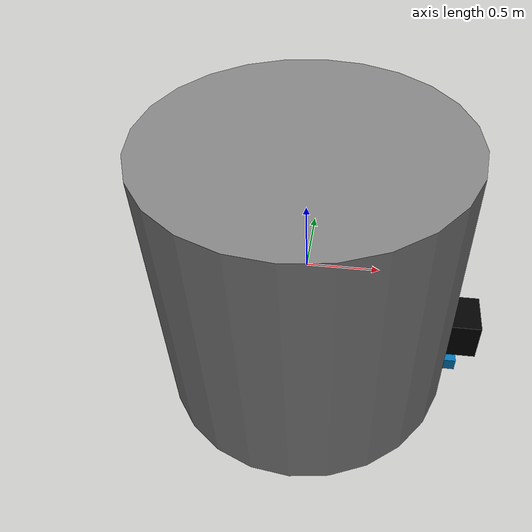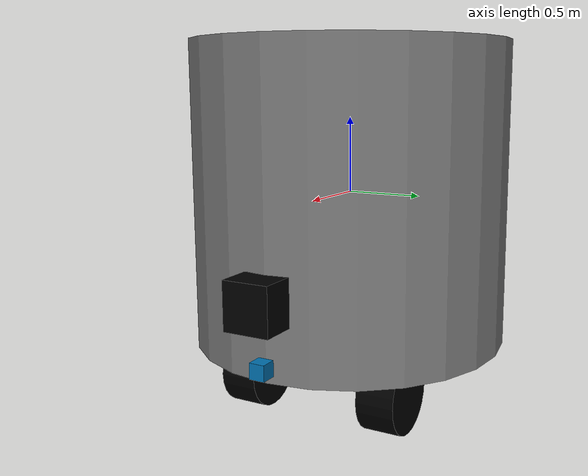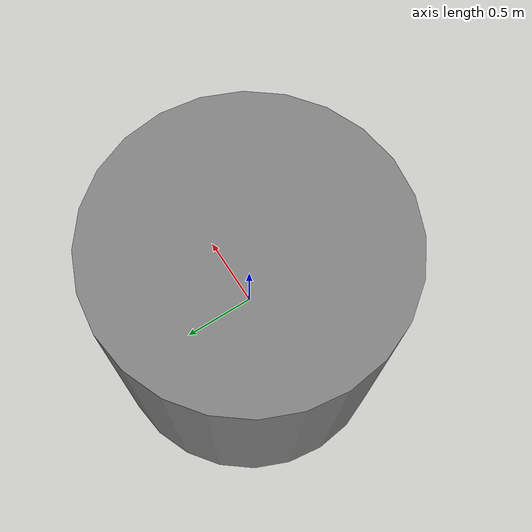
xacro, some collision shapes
<?xml version="1.0" encoding="utf-8"?>
<!-- |    This document was autogenerated by xacro from ../ex00/robot.urdf             | -->
<!-- |    EDITING THIS FILE BY HAND IS NOT RECOMMENDED                                 | -->

<robot name="robot" xmlns:xacro="http://www.ros.org/wiki/xacro">
  <xacro:include filename="$(find robot_diff_drive)/urdf/robot.gazebo.xacro"/>

  <material name="gray">
    <color rgba="0.5 0.5 0.5 1"/>
  </material>

  <material name="black">
    <color rgba="0 0 0 1"/>
  </material>

  <link name="base_link">
    <visual>
      <geometry>
        <cylinder length="2.0" radius="1.05"/>
      </geometry>
      <material name="gray"/>
    </visual>
    <collision>
      <geometry>
        <cylinder length="2.0" radius="1.05"/>
      </geometry>
    </collision>
    <inertial>
      <mass value="20"/>
      <inertia ixx="12.1792" ixy="0.0" ixz="0.0" iyy="12.1792" iyz="0.0" izz="11.025"/>
    </inertial>
  </link>

  <link name="right_wheel">
    <visual>
      <geometry>
        <cylinder length="0.25" radius="0.25"/>
      </geometry>
      <origin rpy="1.57075 1.57075 0"/>
      <material name="black"/>
    </visual>
    <collision>
      <geometry>
        <cylinder length="0.25" radius="0.25"/>
      </geometry>
      <origin rpy="1.57075 1.57075 0"/>
    </collision>
    <inertial>
      <mu1 value="2.0"/>
      <mu2 value="1.0"/>
      <kp value="10000000.0" />
      <kd value="1.0" />
      <mass value="4"/>
      <inertia ixx="0.0833" ixy="0.0" ixz="0.0" iyy="0.0833" iyz="0.0" izz="0.125"/>
    </inertial>
  </link>

  <joint name="right_wheel_to_base_link" type="continuous">
    <parent link="base_link"/>
    <child link="right_wheel"/>
    <axis xyz="0 1 0"/>
    <origin xyz="0.4 0.5 -1.2"/>
  </joint>

  <transmission name="right_wheel_trans">
    <type>transmission_interface/SimpleTransmission</type>
    <actuator name="right_wheel_motor">
      <mechanicalReduction>1</mechanicalReduction>
    </actuator>
    <joint name="right_wheel_to_base_link">
      <hardwareInterface>hardware_interface/VelocityJointInterface</hardwareInterface>
    </joint>
  </transmission>

  <gazebo reference="right_wheel">
    <mu1 value="2.0"/>
    <mu2 value="1.0"/>
    <kp value="10000000.0" />
    <kd value="1.0" />
    <material>Gazebo/Grey</material>
  </gazebo>

  <link name="left_wheel">
    <visual>
      <geometry>
        <cylinder length="0.25" radius="0.25"/>
      </geometry>
      <origin rpy="1.57075 1.57075 0"/>
      <material name="black"/>
    </visual>
    <collision>
      <geometry>
        <cylinder length="0.25" radius="0.25"/>
      </geometry>
      <origin rpy="1.57075 1.57075 0"/>
    </collision>
    <inertial>
      <mu1 value="2.0"/>
      <mu2 value="1.0"/>
      <kp value="10000000.0" />
      <kd value="1.0" />
      <mass value="4"/>
      <inertia ixx="0.0833" ixy="0.0" ixz="0.0" iyy="0.0833" iyz="0.0" izz="0.125"/>
    </inertial>
  </link>

  <joint name="left_wheel_to_base_link" type="continuous">
    <parent link="base_link"/>
    <child link="left_wheel"/>
    <axis xyz="0 1 0"/>
    <origin xyz="0.4 -0.5 -1.2"/>
  </joint>

  <transmission name="left_wheel_trans">
    <type>transmission_interface/SimpleTransmission</type>
    <actuator name="left_wheel_motor">
      <mechanicalReduction>1</mechanicalReduction>
    </actuator>
    <joint name="left_wheel_to_base_link">
      <hardwareInterface>hardware_interface/VelocityJointInterface</hardwareInterface>
    </joint>
  </transmission>

  <gazebo reference="left_wheel">
    <mu1 value="2.0"/>
    <mu2 value="1.0"/>
    <kp value="10000000.0" />
    <kd value="1.0" />
    <material>Gazebo/Grey</material>
  </gazebo>

  <link name="custer">
    <visual>
      <geometry>
        <sphere radius="0.25"/>
      </geometry>
      <origin rpy="0 0 0"/>
      <material name="black"/>
    </visual>
    <collision>
      <geometry>
        <sphere radius="0.25"/>
      </geometry>
    </collision>
    <inertial>
      <mu1 value="0.01"/>
      <mu2 value="0.01"/>
      <kp value="10000000.0" />
      <kd value="1.0" />
      <mass value="5"/>
      <inertia ixx="0.125" ixy="0.0" ixz="0.0" iyy="0.125" iyz="0.0" izz="0.125"/>
    </inertial>
  </link>

  <joint name="custer_to_base_link" type="fixed">
    <parent link="base_link"/>
    <child link="custer"/>
    <origin xyz="-0.4 0.0 -1.2"/>
    <limit effort="1000" velocity="10"/>
  </joint>

  <transmission name="custer_to_base_link_trans">
    <type>transmission_interface/SimpleTransmission</type>
    <actuator name="custer_to_base_link_motor">
      <mechanicalReduction>1</mechanicalReduction>
    </actuator>
    <joint name="custer_to_base_link">
      <hardwareInterface>hardware_interface/PositionJointInterface</hardwareInterface>
    </joint>
  </transmission>

  <gazebo reference="custer">
    <mu1 value="0.01"/>
    <mu2 value="0.01"/>
    <kp value="10000000.0" />
    <kd value="1.0" />
    <material>Gazebo/Grey</material>
  </gazebo>

  <!-- Hokuyo LiDAR -->
  <link name="hokuyo_link">
    <visual>
      <geometry>
        <mesh filename="package://robot_diff_drive/meshes/hokuyo.dae"/>
      </geometry>
    </visual>
    <collision>
      <geometry>
        <box size="0.1 0.1 0.1"/>
      </geometry>
    </collision>
    <inertial>
      <mass value="1e-5"/>
      <inertia ixx="1e-6" ixy="0.0" ixz="0.0" iyy="1e-6" iyz="0.0" izz="1e-6"/>
    </inertial>
  </link>

  <joint name="hokuyo_joint" type="fixed">
    <origin xyz="1.1 0 -0.9"/>
    <parent link="base_link"/>
    <child link="hokuyo_link"/>
  </joint>

  <gazebo reference="hokuyo_link">
    <sensor type="gpu_ray" name="head_hokuyo_sensor">
      <pose>0 0 0 0 0 0</pose>
      <visualize>false</visualize>
      <update_rate>40</update_rate>
      <ray>
        <scan>
          <horizontal>
            <samples>720</samples>
            <resolution>1</resolution>
            <min_angle>-1.570796</min_angle>
            <max_angle>1.570796</max_angle>
          </horizontal>
        </scan>
        <range>
          <min>0.1</min>
          <max>30.0</max>
          <resolution>0.01</resolution>
        </range>
        <noise>
          <mean>0.0</mean>
          <stddev>0.01</stddev>
        </noise>
      </ray>
      <plugin name="gazebo_ros_head_hokuyo_controller" filename="libgazebo_ros_gpu_laser.so">
        <topicName>/laser/scan</topicName>
        <frameName>hokuyo_link</frameName>
      </plugin>
    </sensor>
  </gazebo>

  <link name="kinect_link">
    <visual>
      <geometry>
        <box size="0.3 0.3 0.3"/>
      </geometry>
      <material name="black"/>
    </visual>
    <collision>
      <geometry>
        <box size="0.3 0.3 0.3"/>
      </geometry>
    </collision>
    <inertial>
      <mass value="1e-5"/>
      <inertia ixx="1e-6" ixy="0.0" ixz="0.0" iyy="1e-6" iyz="0.0" izz="1e-6"/>
    </inertial>
  </link>

  <joint name="kinect_joint" type="fixed">
    <origin xyz="1.1 0 -0.5"/>
    <parent link="base_link"/>
    <child link="kinect_link"/>
  </joint>

  <link name="kinect_optical_link">
    <collision>
      <geometry>
        <box size="0.3 0.3 0.3"/>
      </geometry>
    </collision>
    <inertial>
      <mass value="1e-5"/>
      <inertia ixx="1e-6" ixy="0.0" ixz="0.0" iyy="1e-6" iyz="0.0" izz="1e-6"/>
    </inertial>
  </link>

  <joint name="kinect_optical_joint" type="fixed">
    <origin rpy="-1.570796 0 -1.570796"/>
    <parent link="kinect_link"/>
    <child link="kinect_optical_link"/>
  </joint>

  <gazebo reference="kinect_link">
    <sensor type="depth" name="kinect">
      <update_rate>20</update_rate>
      <camera>
        <horizontal_fov>1.047198</horizontal_fov>
        <image>
          <width>640</width>
          <height>480</height>
          <format>R8G8B8</format>
        </image>
        <clip>
          <near>0.05</near>
          <far>30.0</far>
        </clip>
      </camera>
      <plugin name="kinect_link_controller" filename="libgazebo_ros_openni_kinect.so">
        <baseline>0.2</baseline>
        <alwaysOn>true</alwaysOn>
        <updateRate>1.0</updateRate>
        <cameraName>kinect_ir</cameraName>
        <imageTopicName>/kinect/color/image_raw</imageTopicName>
        <cameraInfoTopicName>/kinect/color/camera_info</cameraInfoTopicName>
        <depthImageTopicName>/kinect/depth/image_raw</depthImageTopicName>
        <depthImageInfoTopicName>/kinect/depth/camera_info</depthImageInfoTopicName>
        <pointCloudTopicName>/kinect/depth/points</pointCloudTopicName>
        <frameName>kinect_optical_link</frameName>
        <pointCloudCutoff>0.5</pointCloudCutoff>
        <pointCloudCutoffMax>30.0</pointCloudCutoffMax>
        <distortionK1>0.00000001</distortionK1>
        <distortionK2>0.00000001</distortionK2>
        <distortionK3>0.00000001</distortionK3>
        <distortionT1>0.00000001</distortionT1>
        <distortionT2>0.00000001</distortionT2>
        <CxPrime>0</CxPrime>
        <Cx>0</Cx>
        <Cy>0</Cy>
        <focalLength>0</focalLength>
        <hackBaseline>0</hackBaseline>
      </plugin>
    </sensor>
  </gazebo>

  <link name="imu_link">
    <inertial>
      <mass value="1e-5"/>
      <inertia ixx="1e-6" ixy="0.0" ixz="0.0" iyy="1e-6" iyz="0.0" izz="1e-6"/>
    </inertial>
  </link>

  <joint name="imu_joint" type="fixed">
    <parent link="base_link"/>
    <child link="imu_link"/>
  </joint>

  <gazebo>
    <plugin name="imu_plugin" filename="libgazebo_ros_imu.so">
      <alwaysOn>true</alwaysOn>
      <bodyName>base_link</bodyName>
      <topicName>imu</topicName>
      <serviceName>imu_service</serviceName>
      <gaussianNoise>0.0</gaussianNoise>
      <updateRate>20.0</updateRate>
    </plugin>
  </gazebo>

  <!-- Gazebo plugin for ROS Control -->
  <gazebo>
    <plugin name="gazebo_ros_control" filename="libgazebo_ros_control.so">
      <robotNamespace>/</robotNamespace>
    </plugin>
  </gazebo>
</robot>
